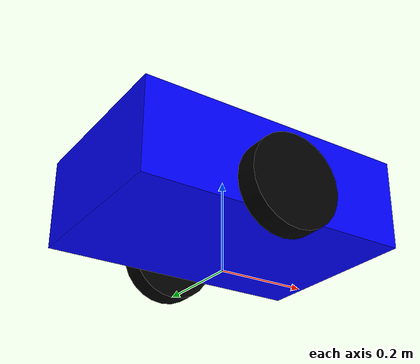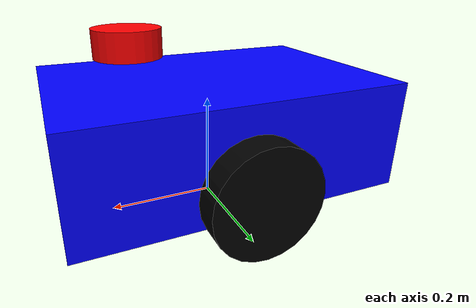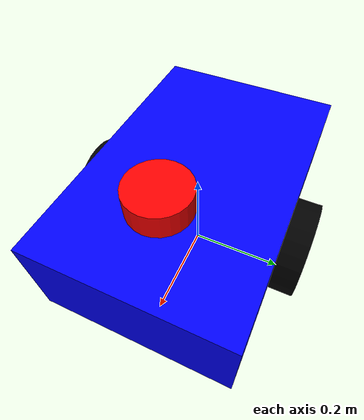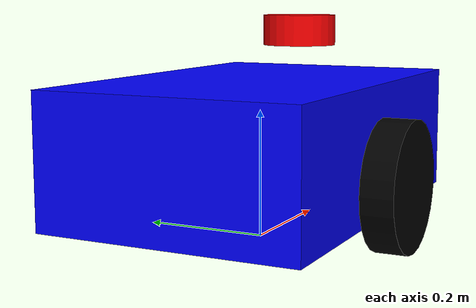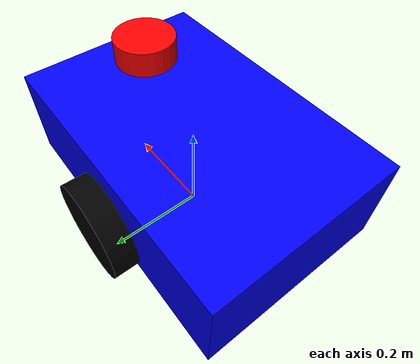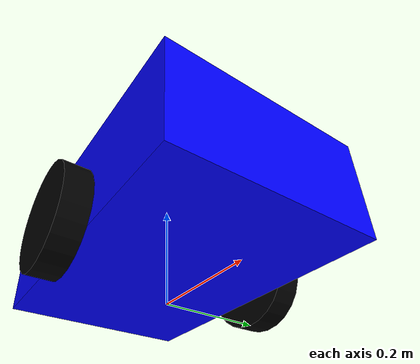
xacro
<?xml version="1.0"?>

<robot name="exam_robot" xmlns:xacro="http://www.ros.org/wiki/xacro">

  <!-- BASE / CORP ROBOT -->
  <link name="base_link">
    <visual>
      <origin xyz="0 0 0.15" rpy="0 0 0"/>
      <geometry>
        <box size="0.6 0.4 0.2"/>
      </geometry>
      <material name="blue">
        <color rgba="0 0 1 1"/>
      </material>
    </visual>

    <collision>
      <origin xyz="0 0 0.15" rpy="0 0 0"/>
      <geometry>
        <box size="0.6 0.4 0.2"/>
      </geometry>
    </collision>

    <inertial>
      <origin xyz="0 0 0.15" rpy="0 0 0"/>
      <mass value="2.0"/>
      <inertia ixx="0.05" ixy="0" ixz="0"
               iyy="0.05" iyz="0"
               izz="0.05"/>
    </inertial>
  </link>

  <!-- LEFT WHEEL -->
  <link name="left_wheel">
    <visual>
      <origin xyz="0 0 0" rpy="1.5708 0 0"/>
      <geometry>
        <cylinder radius="0.1" length="0.05"/>
      </geometry>
      <material name="black">
        <color rgba="0 0 0 1"/>
      </material>
    </visual>

    <collision>
      <origin xyz="0 0 0" rpy="1.5708 0 0"/>
      <geometry>
        <cylinder radius="0.1" length="0.05"/>
      </geometry>
    </collision>

    <inertial>
      <origin xyz="0 0 0" rpy="0 0 0"/>
      <mass value="0.3"/>
      <inertia ixx="0.001" ixy="0" ixz="0"
               iyy="0.001" iyz="0"
               izz="0.001"/>
    </inertial>
  </link>

  <joint name="left_wheel_joint" type="continuous">
    <parent link="base_link"/>
    <child link="left_wheel"/>
    <origin xyz="0 0.225 0.1" rpy="0 0 0"/>
    <axis xyz="0 1 0"/>
  </joint>

  <!-- RIGHT WHEEL -->
  <link name="right_wheel">
    <visual>
      <origin xyz="0 0 0" rpy="1.5708 0 0"/>
      <geometry>
        <cylinder radius="0.1" length="0.05"/>
      </geometry>
      <material name="black"/>
    </visual>

    <collision>
      <origin xyz="0 0 0" rpy="1.5708 0 0"/>
      <geometry>
        <cylinder radius="0.1" length="0.05"/>
      </geometry>
    </collision>

    <inertial>
      <origin xyz="0 0 0" rpy="0 0 0"/>
      <mass value="0.3"/>
      <inertia ixx="0.001" ixy="0" ixz="0"
               iyy="0.001" iyz="0"
               izz="0.001"/>
    </inertial>
  </link>

  <joint name="right_wheel_joint" type="continuous">
    <parent link="base_link"/>
    <child link="right_wheel"/>
    <origin xyz="0 -0.225 0.1" rpy="0 0 0"/>
    <axis xyz="0 1 0"/>
  </joint>

  <!-- LIDAR -->
  <link name="laser_link">
    <visual>
      <origin xyz="0 0 0" rpy="0 0 0"/>
      <geometry>
        <cylinder radius="0.06" length="0.05"/>
      </geometry>
      <material name="red">
        <color rgba="1 0 0 1"/>
      </material>
    </visual>

    <collision>
      <origin xyz="0 0 0" rpy="0 0 0"/>
      <geometry>
        <cylinder radius="0.06" length="0.05"/>
      </geometry>
    </collision>

    <inertial>
      <origin xyz="0 0 0" rpy="0 0 0"/>
      <mass value="0.1"/>
      <inertia ixx="0.0001" ixy="0" ixz="0"
               iyy="0.0001" iyz="0"
               izz="0.0001"/>
    </inertial>
  </link>

  <joint name="laser_joint" type="fixed">
    <parent link="base_link"/>
    <child link="laser_link"/>
    <origin xyz="0.15 0 0.32" rpy="0 0 0"/>
  </joint>

  <!-- GAZEBO DIFF DRIVE PLUGIN: subscribe /cmd_vel, publish /odom -->
  <gazebo>
    <plugin name="diff_drive_controller" filename="libgazebo_ros_diff_drive.so">
      <robotNamespace>/</robotNamespace>
      <commandTopic>cmd_vel</commandTopic>
      <odometryTopic>odom</odometryTopic>
      <odometryFrame>odom</odometryFrame>
      <robotBaseFrame>base_link</robotBaseFrame>

      <leftJoint>left_wheel_joint</leftJoint>
      <rightJoint>right_wheel_joint</rightJoint>

      <wheelSeparation>0.45</wheelSeparation>
      <wheelDiameter>0.2</wheelDiameter>

      <publishOdom>true</publishOdom>
      <publishWheelTF>false</publishWheelTF>
      <publishWheelJointState>true</publishWheelJointState>

      <updateRate>50</updateRate>
      <torque>5</torque>
    </plugin>
  </gazebo>

  <!-- GAZEBO LIDAR PLUGIN: publish /scan -->
  <gazebo reference="laser_link">
    <sensor type="ray" name="lidar_sensor">
      <pose>0 0 0 0 0 0</pose>
      <visualize>true</visualize>
      <update_rate>10</update_rate>

      <ray>
        <scan>
          <horizontal>
            <samples>360</samples>
            <resolution>1</resolution>
            <min_angle>-3.14</min_angle>
            <max_angle>3.14</max_angle>
          </horizontal>
        </scan>

        <range>
          <min>0.1</min>
          <max>5.0</max>
          <resolution>0.01</resolution>
        </range>
      </ray>

      <plugin name="gazebo_ros_laser_controller" filename="libgazebo_ros_laser.so">
        <topicName>/scan</topicName>
        <frameName>laser_link</frameName>
      </plugin>
    </sensor>
  </gazebo>

</robot>
